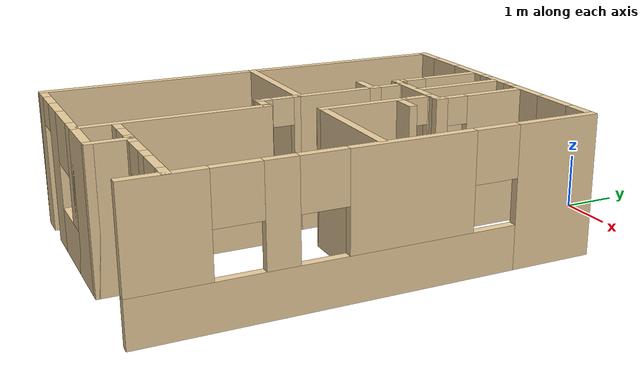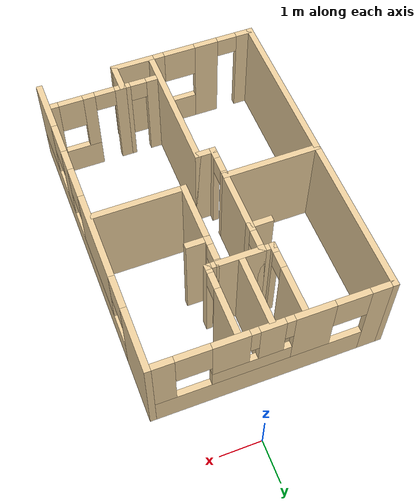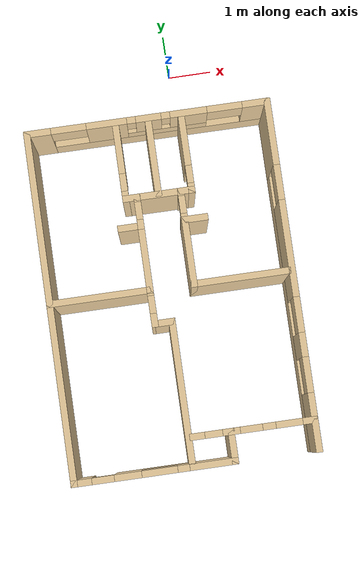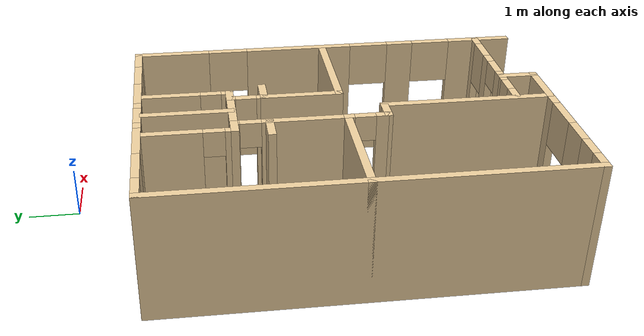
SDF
<?xml version='1.0'?>
<sdf version='1.7'>
  <model name='myhouse'>
    <pose>-0.685 -4.6375 0 0 -0 0</pose>
    <link name='Wall_0'>
      <pose>0 3.2875 0 0 -0 0</pose>
      <visual name='Wall_0_Visual_0'>
        <pose>-2.4917 0 1.25 0 -0 0</pose>
        <geometry>
          <box>
            <size>0.616599 0.15 2.5</size>
          </box>
        </geometry>
        <material>
          <script>
            <uri>file://media/materials/scripts/gazebo.material</uri>
            <name>Gazebo/Grey</name>
          </script>
          <ambient>0.921569 0.807843 0.615686 1</ambient>
        </material>
        <meta>
          <layer>0</layer>
        </meta>
      </visual>
      <collision name='Wall_0_Collision_0'>
        <geometry>
          <box>
            <size>0.616599 0.15 2.5</size>
          </box>
        </geometry>
        <pose>-2.4917 0 1.25 0 -0 0</pose>
      </collision>
      <visual name='Wall_0_Visual_1'>
        <pose>0.3083 0 0.4 0 -0 0</pose>
        <geometry>
          <box>
            <size>4.9834 0.15 0.8</size>
          </box>
        </geometry>
        <material>
          <script>
            <uri>file://media/materials/scripts/gazebo.material</uri>
            <name>Gazebo/Grey</name>
          </script>
          <ambient>0.921569 0.807843 0.615686 1</ambient>
        </material>
        <meta>
          <layer>0</layer>
        </meta>
      </visual>
      <collision name='Wall_0_Collision_1'>
        <geometry>
          <box>
            <size>4.9834 0.15 0.8</size>
          </box>
        </geometry>
        <pose>0.3083 0 0.4 0 -0 0</pose>
      </collision>
      <visual name='Wall_0_Visual_2'>
        <pose>-0.92327 0 1.65 0 -0 0</pose>
        <geometry>
          <box>
            <size>0.920261 0.15 1.7</size>
          </box>
        </geometry>
        <material>
          <script>
            <uri>file://media/materials/scripts/gazebo.material</uri>
            <name>Gazebo/Grey</name>
          </script>
          <ambient>0.921569 0.807843 0.615686 1</ambient>
        </material>
        <meta>
          <layer>0</layer>
        </meta>
      </visual>
      <collision name='Wall_0_Collision_2'>
        <geometry>
          <box>
            <size>0.920261 0.15 1.7</size>
          </box>
        </geometry>
        <pose>-0.92327 0 1.65 0 -0 0</pose>
      </collision>
      <visual name='Wall_0_Visual_3'>
        <pose>2.47829 0 1.65 0 -0 0</pose>
        <geometry>
          <box>
            <size>0.643412 0.15 1.7</size>
          </box>
        </geometry>
        <material>
          <script>
            <uri>file://media/materials/scripts/gazebo.material</uri>
            <name>Gazebo/Grey</name>
          </script>
          <ambient>0.921569 0.807843 0.615686 1</ambient>
        </material>
        <meta>
          <layer>0</layer>
        </meta>
      </visual>
      <collision name='Wall_0_Collision_3'>
        <geometry>
          <box>
            <size>0.643412 0.15 1.7</size>
          </box>
        </geometry>
        <pose>2.47829 0 1.65 0 -0 0</pose>
      </collision>
      <visual name='Wall_0_Visual_4'>
        <pose>0.446724 0 1.05 0 -0 0</pose>
        <geometry>
          <box>
            <size>1.81973 0.15 0.5</size>
          </box>
        </geometry>
        <material>
          <script>
            <uri>file://media/materials/scripts/gazebo.material</uri>
            <name>Gazebo/Grey</name>
          </script>
          <ambient>0.921569 0.807843 0.615686 1</ambient>
        </material>
        <meta>
          <layer>0</layer>
        </meta>
      </visual>
      <collision name='Wall_0_Collision_4'>
        <geometry>
          <box>
            <size>1.81973 0.15 0.5</size>
          </box>
        </geometry>
        <pose>0.446724 0 1.05 0 -0 0</pose>
      </collision>
      <visual name='Wall_0_Visual_5'>
        <pose>0.026274 0 1.9 0 -0 0</pose>
        <geometry>
          <box>
            <size>0.578828 0.15 1.2</size>
          </box>
        </geometry>
        <material>
          <script>
            <uri>file://media/materials/scripts/gazebo.material</uri>
            <name>Gazebo/Grey</name>
          </script>
          <ambient>0.921569 0.807843 0.615686 1</ambient>
        </material>
        <meta>
          <layer>0</layer>
        </meta>
      </visual>
      <collision name='Wall_0_Collision_5'>
        <geometry>
          <box>
            <size>0.578828 0.15 1.2</size>
          </box>
        </geometry>
        <pose>0.026274 0 1.9 0 -0 0</pose>
      </collision>
      <visual name='Wall_0_Visual_6'>
        <pose>0.936138 0 1.9 0 -0 0</pose>
        <geometry>
          <box>
            <size>0.8409 0.15 1.2</size>
          </box>
        </geometry>
        <material>
          <script>
            <uri>file://media/materials/scripts/gazebo.material</uri>
            <name>Gazebo/Grey</name>
          </script>
          <ambient>0.921569 0.807843 0.615686 1</ambient>
        </material>
        <meta>
          <layer>0</layer>
        </meta>
      </visual>
      <collision name='Wall_0_Collision_6'>
        <geometry>
          <box>
            <size>0.8409 0.15 1.2</size>
          </box>
        </geometry>
        <pose>0.936138 0 1.9 0 -0 0</pose>
      </collision>
      <visual name='Wall_0_Visual_7'>
        <pose>-1.7834 0 2.05 0 -0 0</pose>
        <geometry>
          <box>
            <size>0.8 0.15 0.9</size>
          </box>
        </geometry>
        <material>
          <script>
            <uri>file://media/materials/scripts/gazebo.material</uri>
            <name>Gazebo/Grey</name>
          </script>
          <ambient>0.921569 0.807843 0.615686 1</ambient>
        </material>
        <meta>
          <layer>0</layer>
        </meta>
      </visual>
      <collision name='Wall_0_Collision_7'>
        <geometry>
          <box>
            <size>0.8 0.15 0.9</size>
          </box>
        </geometry>
        <pose>-1.7834 0 2.05 0 -0 0</pose>
      </collision>
      <visual name='Wall_0_Visual_8'>
        <pose>1.75659 0 2.05 0 -0 0</pose>
        <geometry>
          <box>
            <size>0.8 0.15 0.9</size>
          </box>
        </geometry>
        <material>
          <script>
            <uri>file://media/materials/scripts/gazebo.material</uri>
            <name>Gazebo/Grey</name>
          </script>
          <ambient>0.921569 0.807843 0.615686 1</ambient>
        </material>
        <meta>
          <layer>0</layer>
        </meta>
      </visual>
      <collision name='Wall_0_Collision_8'>
        <geometry>
          <box>
            <size>0.8 0.15 0.9</size>
          </box>
        </geometry>
        <pose>1.75659 0 2.05 0 -0 0</pose>
      </collision>
      <visual name='Wall_0_Visual_9'>
        <pose>-0.36314 0 2.15 0 -0 0</pose>
        <geometry>
          <box>
            <size>0.2 0.15 0.7</size>
          </box>
        </geometry>
        <material>
          <script>
            <uri>file://media/materials/scripts/gazebo.material</uri>
            <name>Gazebo/Grey</name>
          </script>
          <ambient>0.921569 0.807843 0.615686 1</ambient>
        </material>
        <meta>
          <layer>0</layer>
        </meta>
      </visual>
      <collision name='Wall_0_Collision_9'>
        <geometry>
          <box>
            <size>0.2 0.15 0.7</size>
          </box>
        </geometry>
        <pose>-0.36314 0 2.15 0 -0 0</pose>
      </collision>
      <visual name='Wall_0_Visual_10'>
        <pose>0.415688 0 2.15 0 -0 0</pose>
        <geometry>
          <box>
            <size>0.2 0.15 0.7</size>
          </box>
        </geometry>
        <material>
          <script>
            <uri>file://media/materials/scripts/gazebo.material</uri>
            <name>Gazebo/Grey</name>
          </script>
          <ambient>0.921569 0.807843 0.615686 1</ambient>
        </material>
        <meta>
          <layer>0</layer>
        </meta>
      </visual>
      <collision name='Wall_0_Collision_10'>
        <geometry>
          <box>
            <size>0.2 0.15 0.7</size>
          </box>
        </geometry>
        <pose>0.415688 0 2.15 0 -0 0</pose>
      </collision>
    </link>
    <link name='Wall_1'>
      <pose>2.725 -0.6375 0 0 -0 -1.5708</pose>
      <visual name='Wall_1_Visual_0'>
        <pose>-3.23432 0 1.25 0 -0 0</pose>
        <geometry>
          <box>
            <size>1.53136 0.15 2.5</size>
          </box>
        </geometry>
        <material>
          <script>
            <uri>file://media/materials/scripts/gazebo.material</uri>
            <name>Gazebo/Grey</name>
          </script>
          <ambient>0.921569 0.807843 0.615686 1</ambient>
        </material>
        <meta>
          <layer>0</layer>
        </meta>
      </visual>
      <collision name='Wall_1_Collision_0'>
        <geometry>
          <box>
            <size>1.53136 0.15 2.5</size>
          </box>
        </geometry>
        <pose>-3.23432 0 1.25 0 -0 0</pose>
      </collision>
      <visual name='Wall_1_Visual_1'>
        <pose>0.765677 0 0.4 0 -0 0</pose>
        <geometry>
          <box>
            <size>6.46865 0.15 0.8</size>
          </box>
        </geometry>
        <material>
          <script>
            <uri>file://media/materials/scripts/gazebo.material</uri>
            <name>Gazebo/Grey</name>
          </script>
          <ambient>0.921569 0.807843 0.615686 1</ambient>
        </material>
        <meta>
          <layer>0</layer>
        </meta>
      </visual>
      <collision name='Wall_1_Collision_1'>
        <geometry>
          <box>
            <size>6.46865 0.15 0.8</size>
          </box>
        </geometry>
        <pose>0.765677 0 0.4 0 -0 0</pose>
      </collision>
      <visual name='Wall_1_Visual_2'>
        <pose>-0.570323 0 1.65 0 -0 0</pose>
        <geometry>
          <box>
            <size>2.19665 0.15 1.7</size>
          </box>
        </geometry>
        <material>
          <script>
            <uri>file://media/materials/scripts/gazebo.material</uri>
            <name>Gazebo/Grey</name>
          </script>
          <ambient>0.921569 0.807843 0.615686 1</ambient>
        </material>
        <meta>
          <layer>0</layer>
        </meta>
      </visual>
      <collision name='Wall_1_Collision_2'>
        <geometry>
          <box>
            <size>2.19665 0.15 1.7</size>
          </box>
        </geometry>
        <pose>-0.570323 0 1.65 0 -0 0</pose>
      </collision>
      <visual name='Wall_1_Visual_3'>
        <pose>1.60194 0 1.65 0 -0 0</pose>
        <geometry>
          <box>
            <size>0.547886 0.15 1.7</size>
          </box>
        </geometry>
        <material>
          <script>
            <uri>file://media/materials/scripts/gazebo.material</uri>
            <name>Gazebo/Grey</name>
          </script>
          <ambient>0.921569 0.807843 0.615686 1</ambient>
        </material>
        <meta>
          <layer>0</layer>
        </meta>
      </visual>
      <collision name='Wall_1_Collision_3'>
        <geometry>
          <box>
            <size>0.547886 0.15 1.7</size>
          </box>
        </geometry>
        <pose>1.60194 0 1.65 0 -0 0</pose>
      </collision>
      <visual name='Wall_1_Visual_4'>
        <pose>3.33794 0 1.65 0 -0 0</pose>
        <geometry>
          <box>
            <size>1.32411 0.15 1.7</size>
          </box>
        </geometry>
        <material>
          <script>
            <uri>file://media/materials/scripts/gazebo.material</uri>
            <name>Gazebo/Grey</name>
          </script>
          <ambient>0.921569 0.807843 0.615686 1</ambient>
        </material>
        <meta>
          <layer>0</layer>
        </meta>
      </visual>
      <collision name='Wall_1_Collision_4'>
        <geometry>
          <box>
            <size>1.32411 0.15 1.7</size>
          </box>
        </geometry>
        <pose>3.33794 0 1.65 0 -0 0</pose>
      </collision>
      <visual name='Wall_1_Visual_5'>
        <pose>-2.06865 0 2.05 0 -0 0</pose>
        <geometry>
          <box>
            <size>0.8 0.15 0.9</size>
          </box>
        </geometry>
        <material>
          <script>
            <uri>file://media/materials/scripts/gazebo.material</uri>
            <name>Gazebo/Grey</name>
          </script>
          <ambient>0.921569 0.807843 0.615686 1</ambient>
        </material>
        <meta>
          <layer>0</layer>
        </meta>
      </visual>
      <collision name='Wall_1_Collision_5'>
        <geometry>
          <box>
            <size>0.8 0.15 0.9</size>
          </box>
        </geometry>
        <pose>-2.06865 0 2.05 0 -0 0</pose>
      </collision>
      <visual name='Wall_1_Visual_6'>
        <pose>0.928 0 2.05 0 -0 0</pose>
        <geometry>
          <box>
            <size>0.8 0.15 0.9</size>
          </box>
        </geometry>
        <material>
          <script>
            <uri>file://media/materials/scripts/gazebo.material</uri>
            <name>Gazebo/Grey</name>
          </script>
          <ambient>0.921569 0.807843 0.615686 1</ambient>
        </material>
        <meta>
          <layer>0</layer>
        </meta>
      </visual>
      <collision name='Wall_1_Collision_6'>
        <geometry>
          <box>
            <size>0.8 0.15 0.9</size>
          </box>
        </geometry>
        <pose>0.928 0 2.05 0 -0 0</pose>
      </collision>
      <visual name='Wall_1_Visual_7'>
        <pose>2.27589 0 2.05 0 -0 0</pose>
        <geometry>
          <box>
            <size>0.8 0.15 0.9</size>
          </box>
        </geometry>
        <material>
          <script>
            <uri>file://media/materials/scripts/gazebo.material</uri>
            <name>Gazebo/Grey</name>
          </script>
          <ambient>0.921569 0.807843 0.615686 1</ambient>
        </material>
        <meta>
          <layer>0</layer>
        </meta>
      </visual>
      <collision name='Wall_1_Collision_7'>
        <geometry>
          <box>
            <size>0.8 0.15 0.9</size>
          </box>
        </geometry>
        <pose>2.27589 0 2.05 0 -0 0</pose>
      </collision>
    </link>
    <link name='Wall_16'>
      <collision name='Wall_16_Collision'>
        <geometry>
          <box>
            <size>1.6 0.15 2.5</size>
          </box>
        </geometry>
        <pose>0 0 1.25 0 -0 0</pose>
      </collision>
      <visual name='Wall_16_Visual'>
        <pose>0 0 1.25 0 -0 0</pose>
        <geometry>
          <box>
            <size>1.6 0.15 2.5</size>
          </box>
        </geometry>
        <material>
          <script>
            <uri>file://media/materials/scripts/gazebo.material</uri>
            <name>Gazebo/Grey</name>
          </script>
          <ambient>0.921569 0.807843 0.615686 1</ambient>
        </material>
        <meta>
          <layer>0</layer>
        </meta>
      </visual>
      <pose>0.515227 0.1625 0 0 -0 1.5708</pose>
    </link>
    <link name='Wall_18'>
      <pose>0.515227 1.2125 0 0 -0 1.5708</pose>
      <visual name='Wall_18_Visual_0'>
        <pose>-0.28813 0 1.25 0 -0 0</pose>
        <geometry>
          <box>
            <size>0.22374 0.15 2.5</size>
          </box>
        </geometry>
        <material>
          <script>
            <uri>file://media/materials/scripts/gazebo.material</uri>
            <name>Gazebo/Grey</name>
          </script>
          <ambient>0.921569 0.807843 0.615686 1</ambient>
        </material>
        <meta>
          <layer>0</layer>
        </meta>
      </visual>
      <collision name='Wall_18_Collision_0'>
        <geometry>
          <box>
            <size>0.22374 0.15 2.5</size>
          </box>
        </geometry>
        <pose>-0.28813 0 1.25 0 -0 0</pose>
      </collision>
      <visual name='Wall_18_Visual_1'>
        <pose>0.31187 0 1.25 0 -0 0</pose>
        <geometry>
          <box>
            <size>0.17626 0.15 2.5</size>
          </box>
        </geometry>
        <material>
          <script>
            <uri>file://media/materials/scripts/gazebo.material</uri>
            <name>Gazebo/Grey</name>
          </script>
          <ambient>0.921569 0.807843 0.615686 1</ambient>
        </material>
        <meta>
          <layer>0</layer>
        </meta>
      </visual>
      <collision name='Wall_18_Collision_1'>
        <geometry>
          <box>
            <size>0.17626 0.15 2.5</size>
          </box>
        </geometry>
        <pose>0.31187 0 1.25 0 -0 0</pose>
      </collision>
      <visual name='Wall_18_Visual_2'>
        <pose>0.02374 0 2.25 0 -0 0</pose>
        <geometry>
          <box>
            <size>0.4 0.15 0.5</size>
          </box>
        </geometry>
        <material>
          <script>
            <uri>file://media/materials/scripts/gazebo.material</uri>
            <name>Gazebo/Grey</name>
          </script>
          <ambient>0.921569 0.807843 0.615686 1</ambient>
        </material>
        <meta>
          <layer>0</layer>
        </meta>
      </visual>
      <collision name='Wall_18_Collision_2'>
        <geometry>
          <box>
            <size>0.4 0.15 0.5</size>
          </box>
        </geometry>
        <pose>0.02374 0 2.25 0 -0 0</pose>
      </collision>
    </link>
    <link name='Wall_20'>
      <collision name='Wall_20_Collision'>
        <geometry>
          <box>
            <size>0.4 0.15 2.5</size>
          </box>
        </geometry>
        <pose>0 0 1.25 0 -0 0</pose>
      </collision>
      <visual name='Wall_20_Visual'>
        <pose>0 0 1.25 0 -0 0</pose>
        <geometry>
          <box>
            <size>0.4 0.15 2.5</size>
          </box>
        </geometry>
        <material>
          <script>
            <uri>file://media/materials/scripts/gazebo.material</uri>
            <name>Gazebo/Grey</name>
          </script>
          <ambient>0.921569 0.807843 0.615686 1</ambient>
        </material>
        <meta>
          <layer>0</layer>
        </meta>
      </visual>
      <pose>0.640227 1.5375 0 0 -0 0</pose>
    </link>
    <link name='Wall_22'>
      <pose>0.765227 2.3375 0 0 -0 1.5708</pose>
      <visual name='Wall_22_Visual_0'>
        <pose>-0.759293 0 1.25 0 -0 0</pose>
        <geometry>
          <box>
            <size>0.231415 0.15 2.5</size>
          </box>
        </geometry>
        <material>
          <script>
            <uri>file://media/materials/scripts/gazebo.material</uri>
            <name>Gazebo/Grey</name>
          </script>
          <ambient>0.921569 0.807843 0.615686 1</ambient>
        </material>
        <meta>
          <layer>0</layer>
        </meta>
      </visual>
      <collision name='Wall_22_Collision_0'>
        <geometry>
          <box>
            <size>0.231415 0.15 2.5</size>
          </box>
        </geometry>
        <pose>-0.759293 0 1.25 0 -0 0</pose>
      </collision>
      <visual name='Wall_22_Visual_1'>
        <pose>0.315707 0 1.25 0 -0 0</pose>
        <geometry>
          <box>
            <size>1.11858 0.15 2.5</size>
          </box>
        </geometry>
        <material>
          <script>
            <uri>file://media/materials/scripts/gazebo.material</uri>
            <name>Gazebo/Grey</name>
          </script>
          <ambient>0.921569 0.807843 0.615686 1</ambient>
        </material>
        <meta>
          <layer>0</layer>
        </meta>
      </visual>
      <collision name='Wall_22_Collision_1'>
        <geometry>
          <box>
            <size>1.11858 0.15 2.5</size>
          </box>
        </geometry>
        <pose>0.315707 0 1.25 0 -0 0</pose>
      </collision>
      <visual name='Wall_22_Visual_2'>
        <pose>-0.443585 0 2.25 0 -0 0</pose>
        <geometry>
          <box>
            <size>0.4 0.15 0.5</size>
          </box>
        </geometry>
        <material>
          <script>
            <uri>file://media/materials/scripts/gazebo.material</uri>
            <name>Gazebo/Grey</name>
          </script>
          <ambient>0.921569 0.807843 0.615686 1</ambient>
        </material>
        <meta>
          <layer>0</layer>
        </meta>
      </visual>
      <collision name='Wall_22_Collision_2'>
        <geometry>
          <box>
            <size>0.4 0.15 0.5</size>
          </box>
        </geometry>
        <pose>-0.443585 0 2.25 0 -0 0</pose>
      </collision>
    </link>
    <link name='Wall_25'>
      <collision name='Wall_25_Collision'>
        <geometry>
          <box>
            <size>2.4 0.15 2.5</size>
          </box>
        </geometry>
        <pose>0 0 1.25 0 -0 0</pose>
      </collision>
      <visual name='Wall_25_Visual'>
        <pose>0 0 1.25 0 -0 0</pose>
        <geometry>
          <box>
            <size>2.4 0.15 2.5</size>
          </box>
        </geometry>
        <material>
          <script>
            <uri>file://media/materials/scripts/gazebo.material</uri>
            <name>Gazebo/Grey</name>
          </script>
          <ambient>0.921569 0.807843 0.615686 1</ambient>
        </material>
        <meta>
          <layer>0</layer>
        </meta>
      </visual>
      <pose>-1.6 -0.5625 0 0 -0 0</pose>
    </link>
    <link name='Wall_29'>
      <collision name='Wall_29_Collision'>
        <geometry>
          <box>
            <size>1.6 0.15 2.5</size>
          </box>
        </geometry>
        <pose>0 0 1.25 0 -0 0</pose>
      </collision>
      <visual name='Wall_29_Visual'>
        <pose>0 0 1.25 0 -0 0</pose>
        <geometry>
          <box>
            <size>1.6 0.15 2.5</size>
          </box>
        </geometry>
        <material>
          <script>
            <uri>file://media/materials/scripts/gazebo.material</uri>
            <name>Gazebo/Grey</name>
          </script>
          <ambient>0.921569 0.807843 0.615686 1</ambient>
        </material>
        <meta>
          <layer>0</layer>
        </meta>
      </visual>
      <pose>-0.475 0.1625 0 0 -0 1.5708</pose>
    </link>
    <link name='Wall_31'>
      <pose>-0.475 1.2125 0 0 -0 1.5708</pose>
      <visual name='Wall_31_Visual_0'>
        <pose>-0.28813 0 1.25 0 -0 0</pose>
        <geometry>
          <box>
            <size>0.22374 0.15 2.5</size>
          </box>
        </geometry>
        <material>
          <script>
            <uri>file://media/materials/scripts/gazebo.material</uri>
            <name>Gazebo/Grey</name>
          </script>
          <ambient>0.921569 0.807843 0.615686 1</ambient>
        </material>
        <meta>
          <layer>0</layer>
        </meta>
      </visual>
      <collision name='Wall_31_Collision_0'>
        <geometry>
          <box>
            <size>0.22374 0.15 2.5</size>
          </box>
        </geometry>
        <pose>-0.28813 0 1.25 0 -0 0</pose>
      </collision>
      <visual name='Wall_31_Visual_1'>
        <pose>0.31187 0 1.25 0 -0 0</pose>
        <geometry>
          <box>
            <size>0.17626 0.15 2.5</size>
          </box>
        </geometry>
        <material>
          <script>
            <uri>file://media/materials/scripts/gazebo.material</uri>
            <name>Gazebo/Grey</name>
          </script>
          <ambient>0.921569 0.807843 0.615686 1</ambient>
        </material>
        <meta>
          <layer>0</layer>
        </meta>
      </visual>
      <collision name='Wall_31_Collision_1'>
        <geometry>
          <box>
            <size>0.17626 0.15 2.5</size>
          </box>
        </geometry>
        <pose>0.31187 0 1.25 0 -0 0</pose>
      </collision>
      <visual name='Wall_31_Visual_2'>
        <pose>0.02374 0 2.25 0 -0 0</pose>
        <geometry>
          <box>
            <size>0.4 0.15 0.5</size>
          </box>
        </geometry>
        <material>
          <script>
            <uri>file://media/materials/scripts/gazebo.material</uri>
            <name>Gazebo/Grey</name>
          </script>
          <ambient>0.921569 0.807843 0.615686 1</ambient>
        </material>
        <meta>
          <layer>0</layer>
        </meta>
      </visual>
      <collision name='Wall_31_Collision_2'>
        <geometry>
          <box>
            <size>0.4 0.15 0.5</size>
          </box>
        </geometry>
        <pose>0.02374 0 2.25 0 -0 0</pose>
      </collision>
    </link>
    <link name='Wall_33'>
      <collision name='Wall_33_Collision'>
        <geometry>
          <box>
            <size>0.4 0.15 2.5</size>
          </box>
        </geometry>
        <pose>0 0 1.25 0 -0 0</pose>
      </collision>
      <visual name='Wall_33_Visual'>
        <pose>0 0 1.25 0 -0 0</pose>
        <geometry>
          <box>
            <size>0.4 0.15 2.5</size>
          </box>
        </geometry>
        <material>
          <script>
            <uri>file://media/materials/scripts/gazebo.material</uri>
            <name>Gazebo/Grey</name>
          </script>
          <ambient>0.921569 0.807843 0.615686 1</ambient>
        </material>
        <meta>
          <layer>0</layer>
        </meta>
      </visual>
      <pose>-0.6 1.5375 0 0 -0 3.14159</pose>
    </link>
    <link name='Wall_39'>
      <pose>-0.725 2.3375 0 0 -0 1.5708</pose>
      <visual name='Wall_39_Visual_0'>
        <pose>-0.749293 0 1.25 0 -0 0</pose>
        <geometry>
          <box>
            <size>0.251415 0.15 2.5</size>
          </box>
        </geometry>
        <material>
          <script>
            <uri>file://media/materials/scripts/gazebo.material</uri>
            <name>Gazebo/Grey</name>
          </script>
          <ambient>0.921569 0.807843 0.615686 1</ambient>
        </material>
        <meta>
          <layer>0</layer>
        </meta>
      </visual>
      <collision name='Wall_39_Collision_0'>
        <geometry>
          <box>
            <size>0.251415 0.15 2.5</size>
          </box>
        </geometry>
        <pose>-0.749293 0 1.25 0 -0 0</pose>
      </collision>
      <visual name='Wall_39_Visual_1'>
        <pose>0.325707 0 1.25 0 -0 0</pose>
        <geometry>
          <box>
            <size>1.09858 0.15 2.5</size>
          </box>
        </geometry>
        <material>
          <script>
            <uri>file://media/materials/scripts/gazebo.material</uri>
            <name>Gazebo/Grey</name>
          </script>
          <ambient>0.921569 0.807843 0.615686 1</ambient>
        </material>
        <meta>
          <layer>0</layer>
        </meta>
      </visual>
      <collision name='Wall_39_Collision_1'>
        <geometry>
          <box>
            <size>1.09858 0.15 2.5</size>
          </box>
        </geometry>
        <pose>0.325707 0 1.25 0 -0 0</pose>
      </collision>
      <visual name='Wall_39_Visual_2'>
        <pose>-0.423585 0 2.25 0 -0 0</pose>
        <geometry>
          <box>
            <size>0.4 0.15 0.5</size>
          </box>
        </geometry>
        <material>
          <script>
            <uri>file://media/materials/scripts/gazebo.material</uri>
            <name>Gazebo/Grey</name>
          </script>
          <ambient>0.921569 0.807843 0.615686 1</ambient>
        </material>
        <meta>
          <layer>0</layer>
        </meta>
      </visual>
      <collision name='Wall_39_Collision_2'>
        <geometry>
          <box>
            <size>0.4 0.15 0.5</size>
          </box>
        </geometry>
        <pose>-0.423585 0 2.25 0 -0 0</pose>
      </collision>
    </link>
    <link name='Wall_41'>
      <collision name='Wall_41_Collision'>
        <geometry>
          <box>
            <size>1.14023 0.15 2.5</size>
          </box>
        </geometry>
        <pose>0 0 1.25 0 -0 0</pose>
      </collision>
      <visual name='Wall_41_Visual'>
        <pose>0 0 1.25 0 -0 0</pose>
        <geometry>
          <box>
            <size>1.14023 0.15 2.5</size>
          </box>
        </geometry>
        <material>
          <script>
            <uri>file://media/materials/scripts/gazebo.material</uri>
            <name>Gazebo/Grey</name>
          </script>
          <ambient>0.921569 0.807843 0.615686 1</ambient>
        </material>
        <meta>
          <layer>0</layer>
        </meta>
      </visual>
      <pose>0.020114 1.5375 0 0 -0 0</pose>
    </link>
    <link name='Wall_43'>
      <collision name='Wall_43_Collision'>
        <geometry>
          <box>
            <size>1.75 0.15 2.5</size>
          </box>
        </geometry>
        <pose>0 0 1.25 0 -0 0</pose>
      </collision>
      <visual name='Wall_43_Visual'>
        <pose>0 0 1.25 0 -0 0</pose>
        <geometry>
          <box>
            <size>1.75 0.15 2.5</size>
          </box>
        </geometry>
        <material>
          <script>
            <uri>file://media/materials/scripts/gazebo.material</uri>
            <name>Gazebo/Grey</name>
          </script>
          <ambient>0.921569 0.807843 0.615686 1</ambient>
        </material>
        <meta>
          <layer>0</layer>
        </meta>
      </visual>
      <pose>0.015469 2.36787 0 0 -0 1.5708</pose>
    </link>
    <link name='Wall_45'>
      <collision name='Wall_45_Collision'>
        <geometry>
          <box>
            <size>2.25 0.15 2.5</size>
          </box>
        </geometry>
        <pose>0 0 1.25 0 -0 0</pose>
      </collision>
      <visual name='Wall_45_Visual'>
        <pose>0 0 1.25 0 -0 0</pose>
        <geometry>
          <box>
            <size>2.25 0.15 2.5</size>
          </box>
        </geometry>
        <material>
          <script>
            <uri>file://media/materials/scripts/gazebo.material</uri>
            <name>Gazebo/Grey</name>
          </script>
          <ambient>0.921569 0.807843 0.615686 1</ambient>
        </material>
        <meta>
          <layer>0</layer>
        </meta>
      </visual>
      <pose>1.56523 -0.5625 0 0 -0 0</pose>
    </link>
    <link name='Wall_55'>
      <pose>1.78479 -3.9125 0 0 -0 3.14159</pose>
      <visual name='Wall_55_Visual_0'>
        <pose>-0.837034 0 1.25 0 -0 0</pose>
        <geometry>
          <box>
            <size>0.325932 0.15 2.5</size>
          </box>
        </geometry>
        <material>
          <script>
            <uri>file://media/materials/scripts/gazebo.material</uri>
            <name>Gazebo/Grey</name>
          </script>
          <ambient>0.921569 0.807843 0.615686 1</ambient>
        </material>
        <meta>
          <layer>0</layer>
        </meta>
      </visual>
      <collision name='Wall_55_Collision_0'>
        <geometry>
          <box>
            <size>0.325932 0.15 2.5</size>
          </box>
        </geometry>
        <pose>-0.837034 0 1.25 0 -0 0</pose>
      </collision>
      <visual name='Wall_55_Visual_1'>
        <pose>0.860615 0 1.25 0 -0 0</pose>
        <geometry>
          <box>
            <size>0.278769 0.15 2.5</size>
          </box>
        </geometry>
        <material>
          <script>
            <uri>file://media/materials/scripts/gazebo.material</uri>
            <name>Gazebo/Grey</name>
          </script>
          <ambient>0.921569 0.807843 0.615686 1</ambient>
        </material>
        <meta>
          <layer>0</layer>
        </meta>
      </visual>
      <collision name='Wall_55_Collision_1'>
        <geometry>
          <box>
            <size>0.278769 0.15 2.5</size>
          </box>
        </geometry>
        <pose>0.860615 0 1.25 0 -0 0</pose>
      </collision>
      <visual name='Wall_55_Visual_2'>
        <pose>-0.226418 0 0.4 0 -0 0</pose>
        <geometry>
          <box>
            <size>0.895299 0.15 0.8</size>
          </box>
        </geometry>
        <material>
          <script>
            <uri>file://media/materials/scripts/gazebo.material</uri>
            <name>Gazebo/Grey</name>
          </script>
          <ambient>0.921569 0.807843 0.615686 1</ambient>
        </material>
        <meta>
          <layer>0</layer>
        </meta>
      </visual>
      <collision name='Wall_55_Collision_2'>
        <geometry>
          <box>
            <size>0.895299 0.15 0.8</size>
          </box>
        </geometry>
        <pose>-0.226418 0 0.4 0 -0 0</pose>
      </collision>
      <visual name='Wall_55_Visual_3'>
        <pose>0.073582 0 1.65 0 -0 0</pose>
        <geometry>
          <box>
            <size>0.295299 0.15 1.7</size>
          </box>
        </geometry>
        <material>
          <script>
            <uri>file://media/materials/scripts/gazebo.material</uri>
            <name>Gazebo/Grey</name>
          </script>
          <ambient>0.921569 0.807843 0.615686 1</ambient>
        </material>
        <meta>
          <layer>0</layer>
        </meta>
      </visual>
      <collision name='Wall_55_Collision_3'>
        <geometry>
          <box>
            <size>0.295299 0.15 1.7</size>
          </box>
        </geometry>
        <pose>0.073582 0 1.65 0 -0 0</pose>
      </collision>
      <visual name='Wall_55_Visual_4'>
        <pose>-0.374068 0 2.05 0 -0 0</pose>
        <geometry>
          <box>
            <size>0.6 0.15 0.9</size>
          </box>
        </geometry>
        <material>
          <script>
            <uri>file://media/materials/scripts/gazebo.material</uri>
            <name>Gazebo/Grey</name>
          </script>
          <ambient>0.921569 0.807843 0.615686 1</ambient>
        </material>
        <meta>
          <layer>0</layer>
        </meta>
      </visual>
      <collision name='Wall_55_Collision_4'>
        <geometry>
          <box>
            <size>0.6 0.15 0.9</size>
          </box>
        </geometry>
        <pose>-0.374068 0 2.05 0 -0 0</pose>
      </collision>
      <visual name='Wall_55_Visual_5'>
        <pose>0.471231 0 2.25 0 -0 0</pose>
        <geometry>
          <box>
            <size>0.5 0.15 0.5</size>
          </box>
        </geometry>
        <material>
          <script>
            <uri>file://media/materials/scripts/gazebo.material</uri>
            <name>Gazebo/Grey</name>
          </script>
          <ambient>0.921569 0.807843 0.615686 1</ambient>
        </material>
        <meta>
          <layer>0</layer>
        </meta>
      </visual>
      <collision name='Wall_55_Collision_5'>
        <geometry>
          <box>
            <size>0.5 0.15 0.5</size>
          </box>
        </geometry>
        <pose>0.471231 0 2.25 0 -0 0</pose>
      </collision>
    </link>
    <link name='Wall_6'>
      <collision name='Wall_6_Collision'>
        <geometry>
          <box>
            <size>8 0.15 2.5</size>
          </box>
        </geometry>
        <pose>0 0 1.25 0 -0 0</pose>
      </collision>
      <visual name='Wall_6_Visual'>
        <pose>0 0 1.25 0 -0 0</pose>
        <geometry>
          <box>
            <size>8 0.15 2.5</size>
          </box>
        </geometry>
        <material>
          <script>
            <uri>file://media/materials/scripts/gazebo.material</uri>
            <name>Gazebo/Grey</name>
          </script>
          <ambient>0.921569 0.807843 0.615686 1</ambient>
        </material>
        <meta>
          <layer>0</layer>
        </meta>
      </visual>
      <pose>-2.725 -0.6375 0 0 -0 1.5708</pose>
    </link>
    <link name='Wall_61'>
      <collision name='Wall_61_Collision'>
        <geometry>
          <box>
            <size>0.535 0.15 2.5</size>
          </box>
        </geometry>
        <pose>0 0 1.25 0 -0 0</pose>
      </collision>
      <visual name='Wall_61_Visual'>
        <pose>0 0 1.25 0 -0 0</pose>
        <geometry>
          <box>
            <size>0.535 0.15 2.5</size>
          </box>
        </geometry>
        <material>
          <script>
            <uri>file://media/materials/scripts/gazebo.material</uri>
            <name>Gazebo/Grey</name>
          </script>
          <ambient>0.921569 0.807843 0.615686 1</ambient>
        </material>
        <meta>
          <layer>0</layer>
        </meta>
      </visual>
      <pose>-0.279 -1.324 0 0 -0 3.14159</pose>
    </link>
    <link name='Wall_66'>
      <pose>-0.47325 -0.94325 0 0 -0 -1.5662</pose>
      <visual name='Wall_66_Visual_0'>
        <pose>-0.355334 0 1.25 0 -0 0</pose>
        <geometry>
          <box>
            <size>0.200834 0.15 2.5</size>
          </box>
        </geometry>
        <material>
          <script>
            <uri>file://media/materials/scripts/gazebo.material</uri>
            <name>Gazebo/Grey</name>
          </script>
          <ambient>0.921569 0.807843 0.615686 1</ambient>
        </material>
        <meta>
          <layer>0</layer>
        </meta>
      </visual>
      <collision name='Wall_66_Collision_0'>
        <geometry>
          <box>
            <size>0.200834 0.15 2.5</size>
          </box>
        </geometry>
        <pose>-0.355334 0 1.25 0 -0 0</pose>
      </collision>
      <visual name='Wall_66_Visual_1'>
        <pose>0.300417 0 1.25 0 -0 0</pose>
        <geometry>
          <box>
            <size>0.310668 0.15 2.5</size>
          </box>
        </geometry>
        <material>
          <script>
            <uri>file://media/materials/scripts/gazebo.material</uri>
            <name>Gazebo/Grey</name>
          </script>
          <ambient>0.921569 0.807843 0.615686 1</ambient>
        </material>
        <meta>
          <layer>0</layer>
        </meta>
      </visual>
      <collision name='Wall_66_Collision_1'>
        <geometry>
          <box>
            <size>0.310668 0.15 2.5</size>
          </box>
        </geometry>
        <pose>0.300417 0 1.25 0 -0 0</pose>
      </collision>
      <visual name='Wall_66_Visual_2'>
        <pose>-0.054917 0 2.25 0 -0 0</pose>
        <geometry>
          <box>
            <size>0.4 0.15 0.5</size>
          </box>
        </geometry>
        <material>
          <script>
            <uri>file://media/materials/scripts/gazebo.material</uri>
            <name>Gazebo/Grey</name>
          </script>
          <ambient>0.921569 0.807843 0.615686 1</ambient>
        </material>
        <meta>
          <layer>0</layer>
        </meta>
      </visual>
      <collision name='Wall_66_Collision_2'>
        <geometry>
          <box>
            <size>0.4 0.15 0.5</size>
          </box>
        </geometry>
        <pose>-0.054917 0 2.25 0 -0 0</pose>
      </collision>
    </link>
    <link name='Wall_68'>
      <collision name='Wall_68_Collision'>
        <geometry>
          <box>
            <size>3.25 0.15 2.5</size>
          </box>
        </geometry>
        <pose>0 0 1.25 0 -0 0</pose>
      </collision>
      <visual name='Wall_68_Visual'>
        <pose>0 0 1.25 0 -0 0</pose>
        <geometry>
          <box>
            <size>3.25 0.15 2.5</size>
          </box>
        </geometry>
        <material>
          <script>
            <uri>file://media/materials/scripts/gazebo.material</uri>
            <name>Gazebo/Grey</name>
          </script>
          <ambient>0.921569 0.807843 0.615686 1</ambient>
        </material>
        <meta>
          <layer>0</layer>
        </meta>
      </visual>
      <pose>-0.0865 -2.874 0 0 -0 -1.5708</pose>
    </link>
    <link name='Wall_76'>
      <collision name='Wall_76_Collision'>
        <geometry>
          <box>
            <size>0.8 0.15 2.5</size>
          </box>
        </geometry>
        <pose>0 0 1.25 0 -0 0</pose>
      </collision>
      <visual name='Wall_76_Visual'>
        <pose>0 0 1.25 0 -0 0</pose>
        <geometry>
          <box>
            <size>0.8 0.15 2.5</size>
          </box>
        </geometry>
        <material>
          <script>
            <uri>file://media/materials/scripts/gazebo.material</uri>
            <name>Gazebo/Grey</name>
          </script>
          <ambient>0.921569 0.807843 0.615686 1</ambient>
        </material>
        <meta>
          <layer>0</layer>
        </meta>
      </visual>
      <pose>0.859791 -4.2375 0 0 -0 -1.5708</pose>
    </link>
    <link name='Wall_78'>
      <pose>0.434791 -3.9125 0 0 -0 3.14159</pose>
      <visual name='Wall_78_Visual_0'>
        <pose>-0.369345 0 1.25 0 -0 0</pose>
        <geometry>
          <box>
            <size>0.261309 0.15 2.5</size>
          </box>
        </geometry>
        <material>
          <script>
            <uri>file://media/materials/scripts/gazebo.material</uri>
            <name>Gazebo/Grey</name>
          </script>
          <ambient>0.921569 0.807843 0.615686 1</ambient>
        </material>
        <meta>
          <layer>0</layer>
        </meta>
      </visual>
      <collision name='Wall_78_Collision_0'>
        <geometry>
          <box>
            <size>0.261309 0.15 2.5</size>
          </box>
        </geometry>
        <pose>-0.369345 0 1.25 0 -0 0</pose>
      </collision>
      <visual name='Wall_78_Visual_1'>
        <pose>0.330655 0 1.25 0 -0 0</pose>
        <geometry>
          <box>
            <size>0.338691 0.15 2.5</size>
          </box>
        </geometry>
        <material>
          <script>
            <uri>file://media/materials/scripts/gazebo.material</uri>
            <name>Gazebo/Grey</name>
          </script>
          <ambient>0.921569 0.807843 0.615686 1</ambient>
        </material>
        <meta>
          <layer>0</layer>
        </meta>
      </visual>
      <collision name='Wall_78_Collision_1'>
        <geometry>
          <box>
            <size>0.338691 0.15 2.5</size>
          </box>
        </geometry>
        <pose>0.330655 0 1.25 0 -0 0</pose>
      </collision>
      <visual name='Wall_78_Visual_2'>
        <pose>-0.038691 0 2.25 0 -0 0</pose>
        <geometry>
          <box>
            <size>0.4 0.15 0.5</size>
          </box>
        </geometry>
        <material>
          <script>
            <uri>file://media/materials/scripts/gazebo.material</uri>
            <name>Gazebo/Grey</name>
          </script>
          <ambient>0.921569 0.807843 0.615686 1</ambient>
        </material>
        <meta>
          <layer>0</layer>
        </meta>
      </visual>
      <collision name='Wall_78_Collision_2'>
        <geometry>
          <box>
            <size>0.4 0.15 0.5</size>
          </box>
        </geometry>
        <pose>-0.038691 0 2.25 0 -0 0</pose>
      </collision>
    </link>
    <link name='Wall_80'>
      <collision name='Wall_80_Collision'>
        <geometry>
          <box>
            <size>0.6 0.15 2.5</size>
          </box>
        </geometry>
        <pose>0 0 1.25 0 -0 0</pose>
      </collision>
      <visual name='Wall_80_Visual'>
        <pose>0 0 1.25 0 -0 0</pose>
        <geometry>
          <box>
            <size>0.6 0.15 2.5</size>
          </box>
        </geometry>
        <material>
          <script>
            <uri>file://media/materials/scripts/gazebo.material</uri>
            <name>Gazebo/Grey</name>
          </script>
          <ambient>0.921569 0.807843 0.615686 1</ambient>
        </material>
        <meta>
          <layer>0</layer>
        </meta>
      </visual>
      <pose>-0.7 0.8875 0 0 -0 3.14159</pose>
    </link>
    <link name='Wall_82'>
      <collision name='Wall_82_Collision'>
        <geometry>
          <box>
            <size>0.6 0.15 2.5</size>
          </box>
        </geometry>
        <pose>0 0 1.25 0 -0 0</pose>
      </collision>
      <visual name='Wall_82_Visual'>
        <pose>0 0 1.25 0 -0 0</pose>
        <geometry>
          <box>
            <size>0.6 0.15 2.5</size>
          </box>
        </geometry>
        <material>
          <script>
            <uri>file://media/materials/scripts/gazebo.material</uri>
            <name>Gazebo/Grey</name>
          </script>
          <ambient>0.921569 0.807843 0.615686 1</ambient>
        </material>
        <meta>
          <layer>0</layer>
        </meta>
      </visual>
      <pose>0.740227 0.8875 0 0 -0 0</pose>
    </link>
    <link name='Wall_84'>
      <pose>-1.4 -4.5625 0 0 -0 0</pose>
      <visual name='Wall_84_Visual_0'>
        <pose>-1.16455 0 1.25 0 -0 0</pose>
        <geometry>
          <box>
            <size>0.470891 0.15 2.5</size>
          </box>
        </geometry>
        <material>
          <script>
            <uri>file://media/materials/scripts/gazebo.material</uri>
            <name>Gazebo/Grey</name>
          </script>
          <ambient>0.921569 0.807843 0.615686 1</ambient>
        </material>
        <meta>
          <layer>0</layer>
        </meta>
      </visual>
      <collision name='Wall_84_Collision_0'>
        <geometry>
          <box>
            <size>0.470891 0.15 2.5</size>
          </box>
        </geometry>
        <pose>-1.16455 0 1.25 0 -0 0</pose>
      </collision>
      <visual name='Wall_84_Visual_1'>
        <pose>-0.124467 0 1.25 0 -0 0</pose>
        <geometry>
          <box>
            <size>0.609284 0.15 2.5</size>
          </box>
        </geometry>
        <material>
          <script>
            <uri>file://media/materials/scripts/gazebo.material</uri>
            <name>Gazebo/Grey</name>
          </script>
          <ambient>0.921569 0.807843 0.615686 1</ambient>
        </material>
        <meta>
          <layer>0</layer>
        </meta>
      </visual>
      <collision name='Wall_84_Collision_1'>
        <geometry>
          <box>
            <size>0.609284 0.15 2.5</size>
          </box>
        </geometry>
        <pose>-0.124467 0 1.25 0 -0 0</pose>
      </collision>
      <visual name='Wall_84_Visual_2'>
        <pose>0.790088 0 0.4 0 -0 0</pose>
        <geometry>
          <box>
            <size>1.21982 0.15 0.8</size>
          </box>
        </geometry>
        <material>
          <script>
            <uri>file://media/materials/scripts/gazebo.material</uri>
            <name>Gazebo/Grey</name>
          </script>
          <ambient>0.921569 0.807843 0.615686 1</ambient>
        </material>
        <meta>
          <layer>0</layer>
        </meta>
      </visual>
      <collision name='Wall_84_Collision_2'>
        <geometry>
          <box>
            <size>1.21982 0.15 0.8</size>
          </box>
        </geometry>
        <pose>0.790088 0 0.4 0 -0 0</pose>
      </collision>
      <visual name='Wall_84_Visual_3'>
        <pose>1.19009 0 1.65 0 -0 0</pose>
        <geometry>
          <box>
            <size>0.419824 0.15 1.7</size>
          </box>
        </geometry>
        <material>
          <script>
            <uri>file://media/materials/scripts/gazebo.material</uri>
            <name>Gazebo/Grey</name>
          </script>
          <ambient>0.921569 0.807843 0.615686 1</ambient>
        </material>
        <meta>
          <layer>0</layer>
        </meta>
      </visual>
      <collision name='Wall_84_Collision_3'>
        <geometry>
          <box>
            <size>0.419824 0.15 1.7</size>
          </box>
        </geometry>
        <pose>1.19009 0 1.65 0 -0 0</pose>
      </collision>
      <visual name='Wall_84_Visual_4'>
        <pose>0.580176 0 2.05 0 -0 0</pose>
        <geometry>
          <box>
            <size>0.8 0.15 0.9</size>
          </box>
        </geometry>
        <material>
          <script>
            <uri>file://media/materials/scripts/gazebo.material</uri>
            <name>Gazebo/Grey</name>
          </script>
          <ambient>0.921569 0.807843 0.615686 1</ambient>
        </material>
        <meta>
          <layer>0</layer>
        </meta>
      </visual>
      <collision name='Wall_84_Collision_4'>
        <geometry>
          <box>
            <size>0.8 0.15 0.9</size>
          </box>
        </geometry>
        <pose>0.580176 0 2.05 0 -0 0</pose>
      </collision>
      <visual name='Wall_84_Visual_5'>
        <pose>-0.679109 0 2.25 0 -0 0</pose>
        <geometry>
          <box>
            <size>0.5 0.15 0.5</size>
          </box>
        </geometry>
        <material>
          <script>
            <uri>file://media/materials/scripts/gazebo.material</uri>
            <name>Gazebo/Grey</name>
          </script>
          <ambient>0.921569 0.807843 0.615686 1</ambient>
        </material>
        <meta>
          <layer>0</layer>
        </meta>
      </visual>
      <collision name='Wall_84_Collision_5'>
        <geometry>
          <box>
            <size>0.5 0.15 0.5</size>
          </box>
        </geometry>
        <pose>-0.679109 0 2.25 0 -0 0</pose>
      </collision>
    </link>
    <link name='Wall_88'>
      <collision name='Wall_88_Collision'>
        <geometry>
          <box>
            <size>1.08479 0.15 2.5</size>
          </box>
        </geometry>
        <pose>0 0 1.25 0 -0 0</pose>
      </collision>
      <visual name='Wall_88_Visual'>
        <pose>0 0 1.25 0 -0 0</pose>
        <geometry>
          <box>
            <size>1.08479 0.15 2.5</size>
          </box>
        </geometry>
        <material>
          <script>
            <uri>file://media/materials/scripts/gazebo.material</uri>
            <name>Gazebo/Grey</name>
          </script>
          <ambient>0.921569 0.807843 0.615686 1</ambient>
        </material>
        <meta>
          <layer>0</layer>
        </meta>
      </visual>
      <pose>0.392396 -4.5625 0 0 -0 0</pose>
    </link>
    <static>1</static>
  </model>
</sdf>
